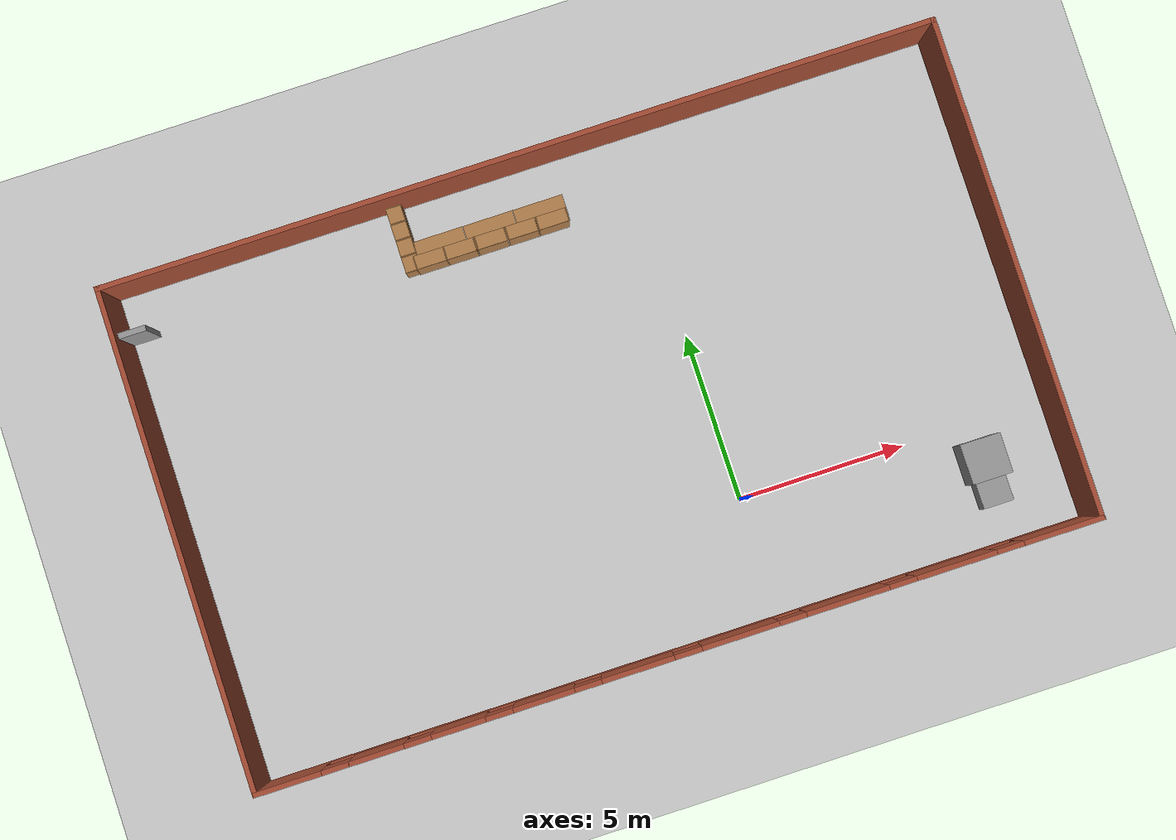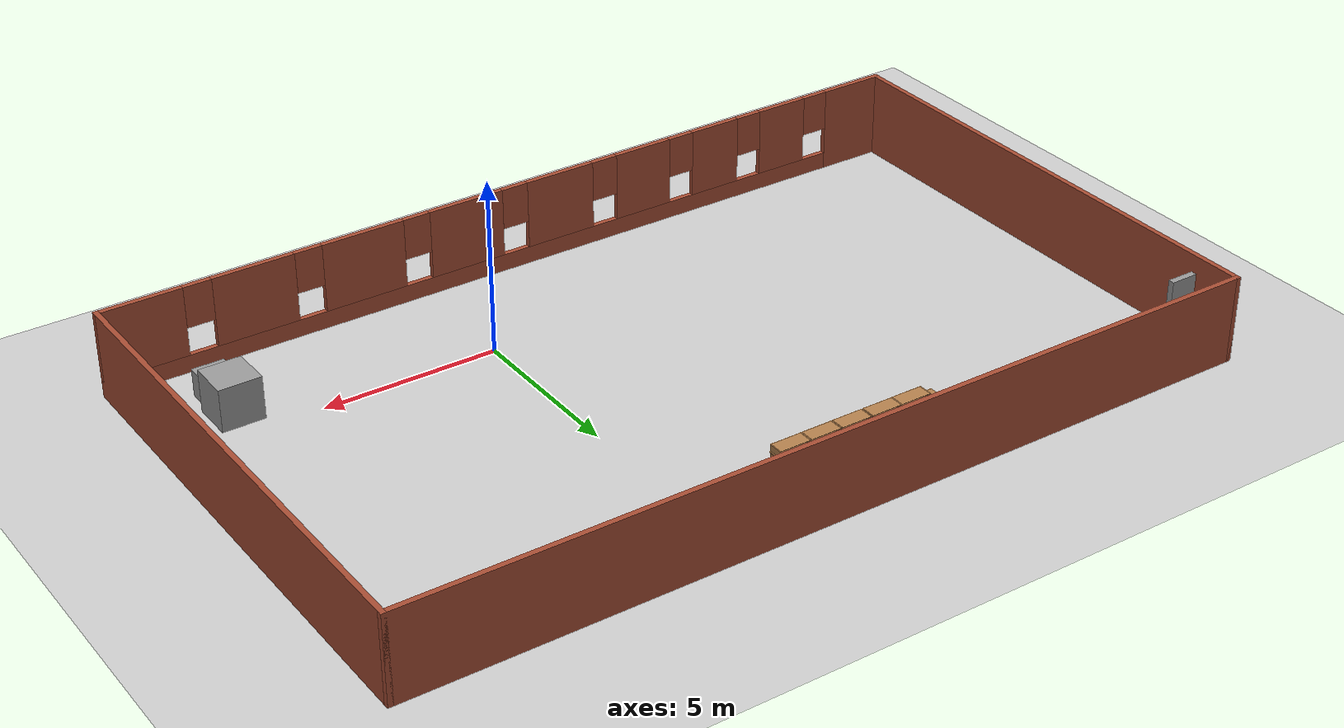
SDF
<sdf version="1.7">
 <world name="default">
  <light name="sun" type="directional">
   <pose>0 0 10 0 -0 0</pose>
   <diffuse>0.8 0.8 0.8 1</diffuse>
   <specular>0.2 0.2 0.2 1</specular>
   <attenuation>
    <range>1000</range>
    <constant>0.9</constant>
    <linear>0.01</linear>
    <quadratic>0.001</quadratic>
   </attenuation>
   <direction>-0.5 0.1 -0.9</direction>
   <spot><inner_angle>0</inner_angle><outer_angle>0</outer_angle><falloff>0</falloff></spot>
  </light>
  <model name="ground_plane">
   <static>1</static>
   <link name="link">
    <collision name="collision">
     <geometry><plane><normal>0 0 1</normal><size>100 100</size></plane></geometry>
     <surface><friction><ode><mu>100</mu><mu2>50</mu2></ode></friction></surface>
    </collision>
    <visual name="visual">
     <cast_shadows>0</cast_shadows>
     <geometry><plane><normal>0 0 1</normal><size>100 100</size></plane></geometry>
     <material>
      <script><uri>file://media/materials/scripts/gazebo.material</uri><name>Gazebo/Grey</name></script>
     </material>
    </visual>
   </link>
  </model>
  <gravity>0 0 -9.8</gravity>
  <magnetic_field>6e-06 2.3e-05 -4.2e-05</magnetic_field>
  <atmosphere type="adiabatic"/>
  <physics type="ode">
   <max_step_size>0.001</max_step_size>
   <real_time_factor>1</real_time_factor>
   <real_time_update_rate>1000</real_time_update_rate>
  </physics>
  <scene><ambient>0.4 0.4 0.4 1</ambient><background>0.7 0.7 0.7 1</background><shadows>1</shadows></scene>
  <audio><device>default</device></audio>
  <spherical_coordinates>
   <surface_model>EARTH_WGS84</surface_model>
   <latitude_deg>0</latitude_deg>
   <longitude_deg>0</longitude_deg>
   <elevation>0</elevation>
   <heading_deg>0</heading_deg>
  </spherical_coordinates>
  <model name="med_walls">
   <pose>-3.1131 3.80528 0 0 -0 0</pose>
   <link name="Door_1">
    <collision name="Door_1_Collision">
     <geometry><box><size>0.9 0.17 2</size></box></geometry>
     <pose>0 0 1 0 -0 0</pose>
    </collision>
    <visual name="Door_1_Visual">
     <pose>0 0 1 0 -0 0</pose>
     <geometry><box><size>0.9 0.17 2</size></box></geometry>
     <material>
      <script><uri>file://media/materials/scripts/gazebo.material</uri><name>Gazebo/Grey</name></script>
     </material>
    </visual>
    <pose>-11.9817 6.03627 0 0 -0 0</pose>
   </link>
   <link name="Wall_10">
    <pose>0 -7.425 0 0 -0 0</pose>
    <visual name="Wall_10_Visual_0">
     <pose>-11.4954 0 1.25 0 -0 0</pose>
     <geometry><box><size>2.00915 0.15 2.5</size></box></geometry>
     <material>
      <script><uri>file://media/materials/scripts/gazebo.material</uri><name>Gazebo/Bricks</name></script>
      <ambient>1 1 1 1</ambient>
     </material>
     <meta><layer>0</layer></meta>
    </visual>
    <collision name="Wall_10_Collision_0">
     <geometry><box><size>2.00915 0.15 2.5</size></box></geometry>
     <pose>-11.4954 0 1.25 0 -0 0</pose>
    </collision>
    <visual name="Wall_10_Visual_1">
     <pose>1.00457 0 0.25 0 -0 0</pose>
     <geometry><box><size>22.9909 0.15 0.5</size></box></geometry>
     <material>
      <script><uri>file://media/materials/scripts/gazebo.material</uri><name>Gazebo/Bricks</name></script>
      <ambient>1 1 1 1</ambient>
     </material>
     <meta><layer>0</layer></meta>
    </visual>
    <collision name="Wall_10_Collision_1">
     <geometry><box><size>22.9909 0.15 0.5</size></box></geometry>
     <pose>1.00457 0 0.25 0 -0 0</pose>
    </collision>
    <visual name="Wall_10_Visual_2">
     <pose>-8.88936 0 1.5 0 -0 0</pose>
     <geometry><box><size>1.60298 0.15 2</size></box></geometry>
     <material>
      <script><uri>file://media/materials/scripts/gazebo.material</uri><name>Gazebo/Bricks</name></script>
      <ambient>1 1 1 1</ambient>
     </material>
     <meta><layer>0</layer></meta>
    </visual>
    <collision name="Wall_10_Collision_2">
     <geometry><box><size>1.60298 0.15 2</size></box></geometry>
     <pose>-8.88936 0 1.5 0 -0 0</pose>
    </collision>
    <visual name="Wall_10_Visual_3">
     <pose>-6.49398 0 1.5 0 -0 0</pose>
     <geometry><box><size>1.58777 0.15 2</size></box></geometry>
     <material>
      <script><uri>file://media/materials/scripts/gazebo.material</uri><name>Gazebo/Bricks</name></script>
      <ambient>1 1 1 1</ambient>
     </material>
     <meta><layer>0</layer></meta>
    </visual>
    <collision name="Wall_10_Collision_3">
     <geometry><box><size>1.58777 0.15 2</size></box></geometry>
     <pose>-6.49398 0 1.5 0 -0 0</pose>
    </collision>
    <visual name="Wall_10_Visual_4">
     <pose>-3.99975 0 1.5 0 -0 0</pose>
     <geometry><box><size>1.8007 0.15 2</size></box></geometry>
     <material>
      <script><uri>file://media/materials/scripts/gazebo.material</uri><name>Gazebo/Bricks</name></script>
      <ambient>1 1 1 1</ambient>
     </material>
     <meta><layer>0</layer></meta>
    </visual>
    <collision name="Wall_10_Collision_4">
     <geometry><box><size>1.8007 0.15 2</size></box></geometry>
     <pose>-3.99975 0 1.5 0 -0 0</pose>
    </collision>
    <visual name="Wall_10_Visual_5">
     <pose>-1.23175 0 1.5 0 -0 0</pose>
     <geometry><box><size>2.13529 0.15 2</size></box></geometry>
     <material>
      <script><uri>file://media/materials/scripts/gazebo.material</uri><name>Gazebo/Bricks</name></script>
      <ambient>1 1 1 1</ambient>
     </material>
     <meta><layer>0</layer></meta>
    </visual>
    <collision name="Wall_10_Collision_5">
     <geometry><box><size>2.13529 0.15 2</size></box></geometry>
     <pose>-1.23175 0 1.5 0 -0 0</pose>
    </collision>
    <visual name="Wall_10_Visual_6">
     <pose>1.77197 0 1.5 0 -0 0</pose>
     <geometry><box><size>2.27217 0.15 2</size></box></geometry>
     <material>
      <script><uri>file://media/materials/scripts/gazebo.material</uri><name>Gazebo/Bricks</name></script>
      <ambient>1 1 1 1</ambient>
     </material>
     <meta><layer>0</layer></meta>
    </visual>
    <collision name="Wall_10_Collision_6">
     <geometry><box><size>2.27217 0.15 2</size></box></geometry>
     <pose>1.77197 0 1.5 0 -0 0</pose>
    </collision>
    <visual name="Wall_10_Visual_7">
     <pose>4.92779 0 1.5 0 -0 0</pose>
     <geometry><box><size>2.43946 0.15 2</size></box></geometry>
     <material>
      <script><uri>file://media/materials/scripts/gazebo.material</uri><name>Gazebo/Bricks</name></script>
      <ambient>1 1 1 1</ambient>
     </material>
     <meta><layer>0</layer></meta>
    </visual>
    <collision name="Wall_10_Collision_7">
     <geometry><box><size>2.43946 0.15 2</size></box></geometry>
     <pose>4.92779 0 1.5 0 -0 0</pose>
    </collision>
    <visual name="Wall_10_Visual_8">
     <pose>8.12923 0 1.5 0 -0 0</pose>
     <geometry><box><size>2.36342 0.15 2</size></box></geometry>
     <material>
      <script><uri>file://media/materials/scripts/gazebo.material</uri><name>Gazebo/Bricks</name></script>
      <ambient>1 1 1 1</ambient>
     </material>
     <meta><layer>0</layer></meta>
    </visual>
    <collision name="Wall_10_Collision_8">
     <geometry><box><size>2.36342 0.15 2</size></box></geometry>
     <pose>8.12923 0 1.5 0 -0 0</pose>
    </collision>
    <visual name="Wall_10_Visual_9">
     <pose>11.3055 0 1.5 0 -0 0</pose>
     <geometry><box><size>2.38906 0.15 2</size></box></geometry>
     <material>
      <script><uri>file://media/materials/scripts/gazebo.material</uri><name>Gazebo/Bricks</name></script>
      <ambient>1 1 1 1</ambient>
     </material>
     <meta><layer>0</layer></meta>
    </visual>
    <collision name="Wall_10_Collision_9">
     <geometry><box><size>2.38906 0.15 2</size></box></geometry>
     <pose>11.3055 0 1.5 0 -0 0</pose>
    </collision>
    <visual name="Wall_10_Visual_10">
     <pose>-10.0909 0 1.9 0 -0 0</pose>
     <geometry><box><size>0.8 0.15 1.2</size></box></geometry>
     <material>
      <script><uri>file://media/materials/scripts/gazebo.material</uri><name>Gazebo/Bricks</name></script>
      <ambient>1 1 1 1</ambient>
     </material>
     <meta><layer>0</layer></meta>
    </visual>
    <collision name="Wall_10_Collision_10">
     <geometry><box><size>0.8 0.15 1.2</size></box></geometry>
     <pose>-10.0909 0 1.9 0 -0 0</pose>
    </collision>
    <visual name="Wall_10_Visual_11">
     <pose>-7.68787 0 1.9 0 -0 0</pose>
     <geometry><box><size>0.8 0.15 1.2</size></box></geometry>
     <material>
      <script><uri>file://media/materials/scripts/gazebo.material</uri><name>Gazebo/Bricks</name></script>
      <ambient>1 1 1 1</ambient>
     </material>
     <meta><layer>0</layer></meta>
    </visual>
    <collision name="Wall_10_Collision_11">
     <geometry><box><size>0.8 0.15 1.2</size></box></geometry>
     <pose>-7.68787 0 1.9 0 -0 0</pose>
    </collision>
    <visual name="Wall_10_Visual_12">
     <pose>-5.3001 0 1.9 0 -0 0</pose>
     <geometry><box><size>0.8 0.15 1.2</size></box></geometry>
     <material>
      <script><uri>file://media/materials/scripts/gazebo.material</uri><name>Gazebo/Bricks</name></script>
      <ambient>1 1 1 1</ambient>
     </material>
     <meta><layer>0</layer></meta>
    </visual>
    <collision name="Wall_10_Collision_12">
     <geometry><box><size>0.8 0.15 1.2</size></box></geometry>
     <pose>-5.3001 0 1.9 0 -0 0</pose>
    </collision>
    <visual name="Wall_10_Visual_13">
     <pose>-2.6994 0 1.9 0 -0 0</pose>
     <geometry><box><size>0.8 0.15 1.2</size></box></geometry>
     <material>
      <script><uri>file://media/materials/scripts/gazebo.material</uri><name>Gazebo/Bricks</name></script>
      <ambient>1 1 1 1</ambient>
     </material>
     <meta><layer>0</layer></meta>
    </visual>
    <collision name="Wall_10_Collision_13">
     <geometry><box><size>0.8 0.15 1.2</size></box></geometry>
     <pose>-2.6994 0 1.9 0 -0 0</pose>
    </collision>
    <visual name="Wall_10_Visual_14">
     <pose>0.235889 0 1.9 0 -0 0</pose>
     <geometry><box><size>0.8 0.15 1.2</size></box></geometry>
     <material>
      <script><uri>file://media/materials/scripts/gazebo.material</uri><name>Gazebo/Bricks</name></script>
      <ambient>1 1 1 1</ambient>
     </material>
     <meta><layer>0</layer></meta>
    </visual>
    <collision name="Wall_10_Collision_14">
     <geometry><box><size>0.8 0.15 1.2</size></box></geometry>
     <pose>0.235889 0 1.9 0 -0 0</pose>
    </collision>
    <visual name="Wall_10_Visual_15">
     <pose>3.30806 0 1.9 0 -0 0</pose>
     <geometry><box><size>0.8 0.15 1.2</size></box></geometry>
     <material>
      <script><uri>file://media/materials/scripts/gazebo.material</uri><name>Gazebo/Bricks</name></script>
      <ambient>1 1 1 1</ambient>
     </material>
     <meta><layer>0</layer></meta>
    </visual>
    <collision name="Wall_10_Collision_15">
     <geometry><box><size>0.8 0.15 1.2</size></box></geometry>
     <pose>3.30806 0 1.9 0 -0 0</pose>
    </collision>
    <visual name="Wall_10_Visual_16">
     <pose>6.54752 0 1.9 0 -0 0</pose>
     <geometry><box><size>0.8 0.15 1.2</size></box></geometry>
     <material>
      <script><uri>file://media/materials/scripts/gazebo.material</uri><name>Gazebo/Bricks</name></script>
      <ambient>1 1 1 1</ambient>
     </material>
     <meta><layer>0</layer></meta>
    </visual>
    <collision name="Wall_10_Collision_16">
     <geometry><box><size>0.8 0.15 1.2</size></box></geometry>
     <pose>6.54752 0 1.9 0 -0 0</pose>
    </collision>
    <visual name="Wall_10_Visual_17">
     <pose>9.71094 0 1.9 0 -0 0</pose>
     <geometry><box><size>0.8 0.15 1.2</size></box></geometry>
     <material>
      <script><uri>file://media/materials/scripts/gazebo.material</uri><name>Gazebo/Bricks</name></script>
      <ambient>1 1 1 1</ambient>
     </material>
     <meta><layer>0</layer></meta>
    </visual>
    <collision name="Wall_10_Collision_17">
     <geometry><box><size>0.8 0.15 1.2</size></box></geometry>
     <pose>9.71094 0 1.9 0 -0 0</pose>
    </collision>
   </link>
   <link name="Wall_17">
    <collision name="Wall_17_Collision">
     <geometry><box><size>15 0.15 2.5</size></box></geometry>
     <pose>0 0 1.25 0 -0 0</pose>
    </collision>
    <visual name="Wall_17_Visual">
     <pose>0 0 1.25 0 -0 0</pose>
     <geometry><box><size>15 0.15 2.5</size></box></geometry>
     <material>
      <script><uri>file://media/materials/scripts/gazebo.material</uri><name>Gazebo/Bricks</name></script>
      <ambient>1 1 1 1</ambient>
     </material>
     <meta><layer>0</layer></meta>
    </visual>
    <pose>12.425 0 0 0 -0 1.5708</pose>
   </link>
   <link name="Wall_19">
    <collision name="Wall_19_Collision">
     <geometry><box><size>15 0.15 2.5</size></box></geometry>
     <pose>0 0 1.25 0 -0 0</pose>
    </collision>
    <visual name="Wall_19_Visual">
     <pose>0 0 1.25 0 -0 0</pose>
     <geometry><box><size>15 0.15 2.5</size></box></geometry>
     <material>
      <script><uri>file://media/materials/scripts/gazebo.material</uri><name>Gazebo/Bricks</name></script>
      <ambient>1 1 1 1</ambient>
     </material>
     <meta><layer>0</layer></meta>
    </visual>
    <pose>-12.425 0 0 0 -0 1.5708</pose>
   </link>
   <link name="Wall_21">
    <collision name="Wall_21_Collision">
     <geometry><box><size>25 0.15 2.5</size></box></geometry>
     <pose>0 0 1.25 0 -0 0</pose>
    </collision>
    <visual name="Wall_21_Visual">
     <pose>0 0 1.25 0 -0 0</pose>
     <geometry><box><size>25 0.15 2.5</size></box></geometry>
     <material>
      <script><uri>file://media/materials/scripts/gazebo.material</uri><name>Gazebo/Bricks</name></script>
      <ambient>1 1 1 1</ambient>
     </material>
     <meta><layer>0</layer></meta>
    </visual>
    <pose>0 7.425 0 0 -0 0</pose>
   </link>
   <static>1</static>
  </model>
  <model name="table">
   <static>1</static>
   <link name="link">
    <collision name="surface">
     <pose>0 0 1 0 -0 0</pose>
     <geometry><box><size>1.5 0.8 0.03</size></box></geometry>
     <surface><friction><ode><mu>0.6</mu><mu2>0.6</mu2></ode></friction></surface>
    </collision>
    <visual name="visual1">
     <pose>0 0 1 0 -0 0</pose>
     <geometry><box><size>1.5 0.8 0.03</size></box></geometry>
     <material>
      <script><uri>file://media/materials/scripts/gazebo.material</uri><name>Gazebo/Wood</name></script>
     </material>
    </visual>
    <collision name="front_left_leg">
     <pose>0.68 0.38 0.5 0 -0 0</pose>
     <geometry><cylinder><radius>0.02</radius><length>1</length></cylinder></geometry>
    </collision>
    <visual name="front_left_leg">
     <pose>0.68 0.38 0.5 0 -0 0</pose>
     <geometry><cylinder><radius>0.02</radius><length>1</length></cylinder></geometry>
     <material>
      <script><uri>file://media/materials/scripts/gazebo.material</uri><name>Gazebo/Grey</name></script>
     </material>
    </visual>
    <collision name="front_right_leg">
     <pose>0.68 -0.38 0.5 0 -0 0</pose>
     <geometry><cylinder><radius>0.02</radius><length>1</length></cylinder></geometry>
    </collision>
    <visual name="front_right_leg">
     <pose>0.68 -0.38 0.5 0 -0 0</pose>
     <geometry><cylinder><radius>0.02</radius><length>1</length></cylinder></geometry>
     <material>
      <script><uri>file://media/materials/scripts/gazebo.material</uri><name>Gazebo/Grey</name></script>
     </material>
    </visual>
    <collision name="back_right_leg">
     <pose>-0.68 -0.38 0.5 0 -0 0</pose>
     <geometry><cylinder><radius>0.02</radius><length>1</length></cylinder></geometry>
    </collision>
    <visual name="back_right_leg">
     <pose>-0.68 -0.38 0.5 0 -0 0</pose>
     <geometry><cylinder><radius>0.02</radius><length>1</length></cylinder></geometry>
     <material>
      <script><uri>file://media/materials/scripts/gazebo.material</uri><name>Gazebo/Grey</name></script>
     </material>
    </visual>
    <collision name="back_left_leg">
     <pose>-0.68 0.38 0.5 0 -0 0</pose>
     <geometry><cylinder><radius>0.02</radius><length>1</length></cylinder></geometry>
    </collision>
    <visual name="back_left_leg">
     <pose>-0.68 0.38 0.5 0 -0 0</pose>
     <geometry><cylinder><radius>0.02</radius><length>1</length></cylinder></geometry>
     <material>
      <script><uri>file://media/materials/scripts/gazebo.material</uri><name>Gazebo/Grey</name></script>
     </material>
    </visual>
   </link>
   <pose>-5.99294 9.5753 0 0 -0 0</pose>
  </model>
  <model name="table_clone">
   <static>1</static>
   <link name="link">
    <collision name="surface">
     <pose>0 0 1 0 -0 0</pose>
     <geometry><box><size>1.5 0.8 0.03</size></box></geometry>
     <surface><friction><ode><mu>0.6</mu><mu2>0.6</mu2></ode></friction></surface>
    </collision>
    <visual name="visual1">
     <pose>0 0 1 0 -0 0</pose>
     <geometry><box><size>1.5 0.8 0.03</size></box></geometry>
     <material>
      <script><uri>file://media/materials/scripts/gazebo.material</uri><name>Gazebo/Wood</name></script>
     </material>
    </visual>
    <collision name="front_left_leg">
     <pose>0.68 0.38 0.5 0 -0 0</pose>
     <geometry><cylinder><radius>0.02</radius><length>1</length></cylinder></geometry>
    </collision>
    <visual name="front_left_leg">
     <pose>0.68 0.38 0.5 0 -0 0</pose>
     <geometry><cylinder><radius>0.02</radius><length>1</length></cylinder></geometry>
     <material>
      <script><uri>file://media/materials/scripts/gazebo.material</uri><name>Gazebo/Grey</name></script>
     </material>
    </visual>
    <collision name="front_right_leg">
     <pose>0.68 -0.38 0.5 0 -0 0</pose>
     <geometry><cylinder><radius>0.02</radius><length>1</length></cylinder></geometry>
    </collision>
    <visual name="front_right_leg">
     <pose>0.68 -0.38 0.5 0 -0 0</pose>
     <geometry><cylinder><radius>0.02</radius><length>1</length></cylinder></geometry>
     <material>
      <script><uri>file://media/materials/scripts/gazebo.material</uri><name>Gazebo/Grey</name></script>
     </material>
    </visual>
    <collision name="back_right_leg">
     <pose>-0.68 -0.38 0.5 0 -0 0</pose>
     <geometry><cylinder><radius>0.02</radius><length>1</length></cylinder></geometry>
    </collision>
    <visual name="back_right_leg">
     <pose>-0.68 -0.38 0.5 0 -0 0</pose>
     <geometry><cylinder><radius>0.02</radius><length>1</length></cylinder></geometry>
     <material>
      <script><uri>file://media/materials/scripts/gazebo.material</uri><name>Gazebo/Grey</name></script>
     </material>
    </visual>
    <collision name="back_left_leg">
     <pose>-0.68 0.38 0.5 0 -0 0</pose>
     <geometry><cylinder><radius>0.02</radius><length>1</length></cylinder></geometry>
    </collision>
    <visual name="back_left_leg">
     <pose>-0.68 0.38 0.5 0 -0 0</pose>
     <geometry><cylinder><radius>0.02</radius><length>1</length></cylinder></geometry>
     <material>
      <script><uri>file://media/materials/scripts/gazebo.material</uri><name>Gazebo/Grey</name></script>
     </material>
    </visual>
   </link>
   <pose>-4.47492 9.5753 0 0 -0 0</pose>
  </model>
  <model name="table_clone_0">
   <static>1</static>
   <link name="link">
    <collision name="surface">
     <pose>0 0 1 0 -0 0</pose>
     <geometry><box><size>1.5 0.8 0.03</size></box></geometry>
     <surface><friction><ode><mu>0.6</mu><mu2>0.6</mu2></ode></friction></surface>
    </collision>
    <visual name="visual1">
     <pose>0 0 1 0 -0 0</pose>
     <geometry><box><size>1.5 0.8 0.03</size></box></geometry>
     <material>
      <script><uri>file://media/materials/scripts/gazebo.material</uri><name>Gazebo/Wood</name></script>
     </material>
    </visual>
    <collision name="front_left_leg">
     <pose>0.68 0.38 0.5 0 -0 0</pose>
     <geometry><cylinder><radius>0.02</radius><length>1</length></cylinder></geometry>
    </collision>
    <visual name="front_left_leg">
     <pose>0.68 0.38 0.5 0 -0 0</pose>
     <geometry><cylinder><radius>0.02</radius><length>1</length></cylinder></geometry>
     <material>
      <script><uri>file://media/materials/scripts/gazebo.material</uri><name>Gazebo/Grey</name></script>
     </material>
    </visual>
    <collision name="front_right_leg">
     <pose>0.68 -0.38 0.5 0 -0 0</pose>
     <geometry><cylinder><radius>0.02</radius><length>1</length></cylinder></geometry>
    </collision>
    <visual name="front_right_leg">
     <pose>0.68 -0.38 0.5 0 -0 0</pose>
     <geometry><cylinder><radius>0.02</radius><length>1</length></cylinder></geometry>
     <material>
      <script><uri>file://media/materials/scripts/gazebo.material</uri><name>Gazebo/Grey</name></script>
     </material>
    </visual>
    <collision name="back_right_leg">
     <pose>-0.68 -0.38 0.5 0 -0 0</pose>
     <geometry><cylinder><radius>0.02</radius><length>1</length></cylinder></geometry>
    </collision>
    <visual name="back_right_leg">
     <pose>-0.68 -0.38 0.5 0 -0 0</pose>
     <geometry><cylinder><radius>0.02</radius><length>1</length></cylinder></geometry>
     <material>
      <script><uri>file://media/materials/scripts/gazebo.material</uri><name>Gazebo/Grey</name></script>
     </material>
    </visual>
    <collision name="back_left_leg">
     <pose>-0.68 0.38 0.5 0 -0 0</pose>
     <geometry><cylinder><radius>0.02</radius><length>1</length></cylinder></geometry>
    </collision>
    <visual name="back_left_leg">
     <pose>-0.68 0.38 0.5 0 -0 0</pose>
     <geometry><cylinder><radius>0.02</radius><length>1</length></cylinder></geometry>
     <material>
      <script><uri>file://media/materials/scripts/gazebo.material</uri><name>Gazebo/Grey</name></script>
     </material>
    </visual>
   </link>
   <pose>-2.95957 9.5753 0 0 -0 0</pose>
  </model>
  <model name="cabinet_clone_0">
   <static>1</static>
   <link name="cabinet_bottom_plate">
    <inertial>
     <pose>0 0 -1 0 -0 0</pose>
     <inertia><ixx>2.05</ixx><ixy>0</ixy><ixz>0</ixz><iyy>2.05</iyy><iyz>0</iyz><izz>2.05</izz></inertia>
     <mass>25</mass>
    </inertial>
    <collision name="cabinet_bottom_plate_geom">
     <pose>0 0 0.01 0 -0 0</pose>
     <geometry><box><size>0.45 0.45 0.02</size></box></geometry>
    </collision>
    <visual name="cabinet_bottom_plate_geom_visual">
     <pose>0 0 0.01 0 -0 0</pose>
     <geometry><box><size>0.45 0.45 0.02</size></box></geometry>
     <material>
      <script><uri>file://media/materials/scripts/gazebo.material</uri><name>Gazebo/Wood</name></script>
     </material>
    </visual>
    <collision name="cabinet_bottom_plate_geom_cabinet_back_plate">
     <pose>0.235 0 0.51 0 -0 0</pose>
     <geometry><box><size>0.02 0.45 1.02</size></box></geometry>
    </collision>
    <visual name="cabinet_bottom_plate_geom_cabinet_back_plate_visual">
     <pose>0.235 0 0.51 0 -0 0</pose>
     <geometry><box><size>0.02 0.45 1.02</size></box></geometry>
     <material>
      <script><uri>file://media/materials/scripts/gazebo.material</uri><name>Gazebo/Wood</name></script>
     </material>
    </visual>
    <collision name="cabinet_bottom_plate_geom_cabinet_left_plate">
     <pose>0 0.235 0.51 0 -0 0</pose>
     <geometry><box><size>0.45 0.02 1.02</size></box></geometry>
    </collision>
    <visual name="cabinet_bottom_plate_geom_cabinet_left_plate_visual">
     <pose>0 0.235 0.51 0 -0 0</pose>
     <geometry><box><size>0.45 0.02 1.02</size></box></geometry>
     <material>
      <script><uri>file://media/materials/scripts/gazebo.material</uri><name>Gazebo/Wood</name></script>
     </material>
    </visual>
    <collision name="cabinet_bottom_plate_geom_cabinet_middle_plate">
     <pose>0 0 0.51 0 -0 0</pose>
     <geometry><box><size>0.45 0.45 0.02</size></box></geometry>
    </collision>
    <visual name="cabinet_bottom_plate_geom_cabinet_middle_plate_visual">
     <pose>0 0 0.51 0 -0 0</pose>
     <geometry><box><size>0.45 0.45 0.02</size></box></geometry>
     <material>
      <script><uri>file://media/materials/scripts/gazebo.material</uri><name>Gazebo/Wood</name></script>
     </material>
    </visual>
    <collision name="cabinet_bottom_plate_geom_cabinet_right_plate">
     <pose>0 -0.235 0.51 0 -0 0</pose>
     <geometry><box><size>0.45 0.02 1.02</size></box></geometry>
    </collision>
    <visual name="cabinet_bottom_plate_geom_cabinet_right_plate_visual">
     <pose>0 -0.235 0.51 0 -0 0</pose>
     <geometry><box><size>0.45 0.02 1.02</size></box></geometry>
     <material>
      <script><uri>file://media/materials/scripts/gazebo.material</uri><name>Gazebo/Wood</name></script>
     </material>
    </visual>
    <collision name="cabinet_bottom_plate_geom_cabinet_top_plate">
     <pose>0 0 1.01 0 -0 0</pose>
     <geometry><box><size>0.45 0.45 0.02</size></box></geometry>
    </collision>
    <visual name="cabinet_bottom_plate_geom_cabinet_top_plate_visual">
     <pose>0 0 1.01 0 -0 0</pose>
     <geometry><box><size>0.45 0.45 0.02</size></box></geometry>
     <material>
      <script><uri>file://media/materials/scripts/gazebo.material</uri><name>Gazebo/Wood</name></script>
     </material>
    </visual>
   </link>
   <pose>-6.97745 9.41498 0 0 -0 0</pose>
  </model>
  <model name="cabinet_clone_1">
   <static>1</static>
   <link name="cabinet_bottom_plate">
    <inertial>
     <pose>0 0 -1 0 -0 0</pose>
     <inertia><ixx>2.05</ixx><ixy>0</ixy><ixz>0</ixz><iyy>2.05</iyy><iyz>0</iyz><izz>2.05</izz></inertia>
     <mass>25</mass>
    </inertial>
    <collision name="cabinet_bottom_plate_geom">
     <pose>0 0 0.01 0 -0 0</pose>
     <geometry><box><size>0.45 0.45 0.02</size></box></geometry>
    </collision>
    <visual name="cabinet_bottom_plate_geom_visual">
     <pose>0 0 0.01 0 -0 0</pose>
     <geometry><box><size>0.45 0.45 0.02</size></box></geometry>
     <material>
      <script><uri>file://media/materials/scripts/gazebo.material</uri><name>Gazebo/Wood</name></script>
     </material>
    </visual>
    <collision name="cabinet_bottom_plate_geom_cabinet_back_plate">
     <pose>0.235 0 0.51 0 -0 0</pose>
     <geometry><box><size>0.02 0.45 1.02</size></box></geometry>
    </collision>
    <visual name="cabinet_bottom_plate_geom_cabinet_back_plate_visual">
     <pose>0.235 0 0.51 0 -0 0</pose>
     <geometry><box><size>0.02 0.45 1.02</size></box></geometry>
     <material>
      <script><uri>file://media/materials/scripts/gazebo.material</uri><name>Gazebo/Wood</name></script>
     </material>
    </visual>
    <collision name="cabinet_bottom_plate_geom_cabinet_left_plate">
     <pose>0 0.235 0.51 0 -0 0</pose>
     <geometry><box><size>0.45 0.02 1.02</size></box></geometry>
    </collision>
    <visual name="cabinet_bottom_plate_geom_cabinet_left_plate_visual">
     <pose>0 0.235 0.51 0 -0 0</pose>
     <geometry><box><size>0.45 0.02 1.02</size></box></geometry>
     <material>
      <script><uri>file://media/materials/scripts/gazebo.material</uri><name>Gazebo/Wood</name></script>
     </material>
    </visual>
    <collision name="cabinet_bottom_plate_geom_cabinet_middle_plate">
     <pose>0 0 0.51 0 -0 0</pose>
     <geometry><box><size>0.45 0.45 0.02</size></box></geometry>
    </collision>
    <visual name="cabinet_bottom_plate_geom_cabinet_middle_plate_visual">
     <pose>0 0 0.51 0 -0 0</pose>
     <geometry><box><size>0.45 0.45 0.02</size></box></geometry>
     <material>
      <script><uri>file://media/materials/scripts/gazebo.material</uri><name>Gazebo/Wood</name></script>
     </material>
    </visual>
    <collision name="cabinet_bottom_plate_geom_cabinet_right_plate">
     <pose>0 -0.235 0.51 0 -0 0</pose>
     <geometry><box><size>0.45 0.02 1.02</size></box></geometry>
    </collision>
    <visual name="cabinet_bottom_plate_geom_cabinet_right_plate_visual">
     <pose>0 -0.235 0.51 0 -0 0</pose>
     <geometry><box><size>0.45 0.02 1.02</size></box></geometry>
     <material>
      <script><uri>file://media/materials/scripts/gazebo.material</uri><name>Gazebo/Wood</name></script>
     </material>
    </visual>
    <collision name="cabinet_bottom_plate_geom_cabinet_top_plate">
     <pose>0 0 1.01 0 -0 0</pose>
     <geometry><box><size>0.45 0.45 0.02</size></box></geometry>
    </collision>
    <visual name="cabinet_bottom_plate_geom_cabinet_top_plate_visual">
     <pose>0 0 1.01 0 -0 0</pose>
     <geometry><box><size>0.45 0.45 0.02</size></box></geometry>
     <material>
      <script><uri>file://media/materials/scripts/gazebo.material</uri><name>Gazebo/Wood</name></script>
     </material>
    </visual>
   </link>
   <pose>-6.97745 10.4079 0 0 -0 0</pose>
  </model>
  <model name="cabinet_clone_2">
   <static>1</static>
   <link name="cabinet_bottom_plate">
    <inertial>
     <pose>0 0 -1 0 -0 0</pose>
     <inertia><ixx>2.05</ixx><ixy>0</ixy><ixz>0</ixz><iyy>2.05</iyy><iyz>0</iyz><izz>2.05</izz></inertia>
     <mass>25</mass>
    </inertial>
    <collision name="cabinet_bottom_plate_geom">
     <pose>0 0 0.01 0 -0 0</pose>
     <geometry><box><size>0.45 0.45 0.02</size></box></geometry>
    </collision>
    <visual name="cabinet_bottom_plate_geom_visual">
     <pose>0 0 0.01 0 -0 0</pose>
     <geometry><box><size>0.45 0.45 0.02</size></box></geometry>
     <material>
      <script><uri>file://media/materials/scripts/gazebo.material</uri><name>Gazebo/Wood</name></script>
     </material>
    </visual>
    <collision name="cabinet_bottom_plate_geom_cabinet_back_plate">
     <pose>0.235 0 0.51 0 -0 0</pose>
     <geometry><box><size>0.02 0.45 1.02</size></box></geometry>
    </collision>
    <visual name="cabinet_bottom_plate_geom_cabinet_back_plate_visual">
     <pose>0.235 0 0.51 0 -0 0</pose>
     <geometry><box><size>0.02 0.45 1.02</size></box></geometry>
     <material>
      <script><uri>file://media/materials/scripts/gazebo.material</uri><name>Gazebo/Wood</name></script>
     </material>
    </visual>
    <collision name="cabinet_bottom_plate_geom_cabinet_left_plate">
     <pose>0 0.235 0.51 0 -0 0</pose>
     <geometry><box><size>0.45 0.02 1.02</size></box></geometry>
    </collision>
    <visual name="cabinet_bottom_plate_geom_cabinet_left_plate_visual">
     <pose>0 0.235 0.51 0 -0 0</pose>
     <geometry><box><size>0.45 0.02 1.02</size></box></geometry>
     <material>
      <script><uri>file://media/materials/scripts/gazebo.material</uri><name>Gazebo/Wood</name></script>
     </material>
    </visual>
    <collision name="cabinet_bottom_plate_geom_cabinet_middle_plate">
     <pose>0 0 0.51 0 -0 0</pose>
     <geometry><box><size>0.45 0.45 0.02</size></box></geometry>
    </collision>
    <visual name="cabinet_bottom_plate_geom_cabinet_middle_plate_visual">
     <pose>0 0 0.51 0 -0 0</pose>
     <geometry><box><size>0.45 0.45 0.02</size></box></geometry>
     <material>
      <script><uri>file://media/materials/scripts/gazebo.material</uri><name>Gazebo/Wood</name></script>
     </material>
    </visual>
    <collision name="cabinet_bottom_plate_geom_cabinet_right_plate">
     <pose>0 -0.235 0.51 0 -0 0</pose>
     <geometry><box><size>0.45 0.02 1.02</size></box></geometry>
    </collision>
    <visual name="cabinet_bottom_plate_geom_cabinet_right_plate_visual">
     <pose>0 -0.235 0.51 0 -0 0</pose>
     <geometry><box><size>0.45 0.02 1.02</size></box></geometry>
     <material>
      <script><uri>file://media/materials/scripts/gazebo.material</uri><name>Gazebo/Wood</name></script>
     </material>
    </visual>
    <collision name="cabinet_bottom_plate_geom_cabinet_top_plate">
     <pose>0 0 1.01 0 -0 0</pose>
     <geometry><box><size>0.45 0.45 0.02</size></box></geometry>
    </collision>
    <visual name="cabinet_bottom_plate_geom_cabinet_top_plate_visual">
     <pose>0 0 1.01 0 -0 0</pose>
     <geometry><box><size>0.45 0.45 0.02</size></box></geometry>
     <material>
      <script><uri>file://media/materials/scripts/gazebo.material</uri><name>Gazebo/Wood</name></script>
     </material>
    </visual>
   </link>
   <pose>-6.97745 9.91083 0 0 -0 0</pose>
  </model>
  <model name="cabinet_clone_2_clone">
   <static>1</static>
   <link name="cabinet_bottom_plate">
    <inertial>
     <pose>0 0 -1 0 -0 0</pose>
     <inertia><ixx>2.05</ixx><ixy>0</ixy><ixz>0</ixz><iyy>2.05</iyy><iyz>0</iyz><izz>2.05</izz></inertia>
     <mass>25</mass>
    </inertial>
    <collision name="cabinet_bottom_plate_geom">
     <pose>0 0 0.01 0 -0 0</pose>
     <geometry><box><size>0.45 0.45 0.02</size></box></geometry>
    </collision>
    <visual name="cabinet_bottom_plate_geom_visual">
     <pose>0 0 0.01 0 -0 0</pose>
     <geometry><box><size>0.45 0.45 0.02</size></box></geometry>
     <material>
      <script><uri>file://media/materials/scripts/gazebo.material</uri><name>Gazebo/Wood</name></script>
     </material>
    </visual>
    <collision name="cabinet_bottom_plate_geom_cabinet_back_plate">
     <pose>0.235 0 0.51 0 -0 0</pose>
     <geometry><box><size>0.02 0.45 1.02</size></box></geometry>
    </collision>
    <visual name="cabinet_bottom_plate_geom_cabinet_back_plate_visual">
     <pose>0.235 0 0.51 0 -0 0</pose>
     <geometry><box><size>0.02 0.45 1.02</size></box></geometry>
     <material>
      <script><uri>file://media/materials/scripts/gazebo.material</uri><name>Gazebo/Wood</name></script>
     </material>
    </visual>
    <collision name="cabinet_bottom_plate_geom_cabinet_left_plate">
     <pose>0 0.235 0.51 0 -0 0</pose>
     <geometry><box><size>0.45 0.02 1.02</size></box></geometry>
    </collision>
    <visual name="cabinet_bottom_plate_geom_cabinet_left_plate_visual">
     <pose>0 0.235 0.51 0 -0 0</pose>
     <geometry><box><size>0.45 0.02 1.02</size></box></geometry>
     <material>
      <script><uri>file://media/materials/scripts/gazebo.material</uri><name>Gazebo/Wood</name></script>
     </material>
    </visual>
    <collision name="cabinet_bottom_plate_geom_cabinet_middle_plate">
     <pose>0 0 0.51 0 -0 0</pose>
     <geometry><box><size>0.45 0.45 0.02</size></box></geometry>
    </collision>
    <visual name="cabinet_bottom_plate_geom_cabinet_middle_plate_visual">
     <pose>0 0 0.51 0 -0 0</pose>
     <geometry><box><size>0.45 0.45 0.02</size></box></geometry>
     <material>
      <script><uri>file://media/materials/scripts/gazebo.material</uri><name>Gazebo/Wood</name></script>
     </material>
    </visual>
    <collision name="cabinet_bottom_plate_geom_cabinet_right_plate">
     <pose>0 -0.235 0.51 0 -0 0</pose>
     <geometry><box><size>0.45 0.02 1.02</size></box></geometry>
    </collision>
    <visual name="cabinet_bottom_plate_geom_cabinet_right_plate_visual">
     <pose>0 -0.235 0.51 0 -0 0</pose>
     <geometry><box><size>0.45 0.02 1.02</size></box></geometry>
     <material>
      <script><uri>file://media/materials/scripts/gazebo.material</uri><name>Gazebo/Wood</name></script>
     </material>
    </visual>
    <collision name="cabinet_bottom_plate_geom_cabinet_top_plate">
     <pose>0 0 1.01 0 -0 0</pose>
     <geometry><box><size>0.45 0.45 0.02</size></box></geometry>
    </collision>
    <visual name="cabinet_bottom_plate_geom_cabinet_top_plate_visual">
     <pose>0 0 1.01 0 -0 0</pose>
     <geometry><box><size>0.45 0.45 0.02</size></box></geometry>
     <material>
      <script><uri>file://media/materials/scripts/gazebo.material</uri><name>Gazebo/Wood</name></script>
     </material>
    </visual>
   </link>
   <pose>-6.97745 10.9018 0 0 -0 0</pose>
  </model>
  <model name="bookshelf">
   <static>1</static>
   <link name="link">
    <inertial><mass>1</mass></inertial>
    <collision name="back">
     <pose>0 0.005 0.6 0 -0 0</pose>
     <geometry><box><size>0.9 0.01 1.2</size></box></geometry>
    </collision>
    <visual name="visual1">
     <pose>0 0.005 0.6 0 -0 0</pose>
     <geometry><box><size>0.9 0.01 1.2</size></box></geometry>
     <material>
      <script><uri>file://media/materials/scripts/gazebo.material</uri><name>Gazebo/Wood</name></script>
     </material>
    </visual>
    <collision name="left_side">
     <pose>0.45 -0.195 0.6 0 -0 0</pose>
     <geometry><box><size>0.02 0.4 1.2</size></box></geometry>
    </collision>
    <visual name="visual2">
     <pose>0.45 -0.195 0.6 0 -0 0</pose>
     <geometry><box><size>0.02 0.4 1.2</size></box></geometry>
     <material>
      <script><uri>file://media/materials/scripts/gazebo.material</uri><name>Gazebo/Wood</name></script>
     </material>
    </visual>
    <collision name="right_side">
     <pose>-0.45 -0.195 0.6 0 -0 0</pose>
     <geometry><box><size>0.02 0.4 1.2</size></box></geometry>
    </collision>
    <visual name="visual3">
     <pose>-0.45 -0.195 0.6 0 -0 0</pose>
     <geometry><box><size>0.02 0.4 1.2</size></box></geometry>
     <material>
      <script><uri>file://media/materials/scripts/gazebo.material</uri><name>Gazebo/Wood</name></script>
     </material>
    </visual>
    <collision name="bottom">
     <pose>0 -0.195 0.03 0 -0 0</pose>
     <geometry><box><size>0.88 0.4 0.06</size></box></geometry>
    </collision>
    <visual name="visual4">
     <pose>0 -0.195 0.03 0 -0 0</pose>
     <geometry><box><size>0.88 0.4 0.06</size></box></geometry>
     <material>
      <script><uri>file://media/materials/scripts/gazebo.material</uri><name>Gazebo/Wood</name></script>
     </material>
    </visual>
    <collision name="top">
     <pose>0 -0.195 1.19 0 -0 0</pose>
     <geometry><box><size>0.88 0.4 0.02</size></box></geometry>
    </collision>
    <visual name="visual5">
     <pose>0 -0.195 1.19 0 -0 0</pose>
     <geometry><box><size>0.88 0.4 0.02</size></box></geometry>
     <material>
      <script><uri>file://media/materials/scripts/gazebo.material</uri><name>Gazebo/Wood</name></script>
     </material>
    </visual>
    <collision name="low_shelf">
     <pose>0 -0.195 0.43 0 -0 0</pose>
     <geometry><box><size>0.88 0.4 0.02</size></box></geometry>
    </collision>
    <visual name="visual6">
     <pose>0 -0.195 0.43 0 -0 0</pose>
     <geometry><box><size>0.88 0.4 0.02</size></box></geometry>
     <material>
      <script><uri>file://media/materials/scripts/gazebo.material</uri><name>Gazebo/Wood</name></script>
     </material>
    </visual>
    <collision name="high_shelf">
     <pose>0 -0.195 0.8 0 -0 0</pose>
     <geometry><box><size>0.88 0.4 0.02</size></box></geometry>
    </collision>
    <visual name="visual7">
     <pose>0 -0.195 0.8 0 -0 0</pose>
     <geometry><box><size>0.88 0.4 0.02</size></box></geometry>
     <material>
      <script><uri>file://media/materials/scripts/gazebo.material</uri><name>Gazebo/Wood</name></script>
     </material>
    </visual>
   </link>
   <pose>-2.70056 9.16191 0 0 -0 3.13728</pose>
  </model>
  <model name="bookshelf_clone">
   <static>1</static>
   <link name="link">
    <inertial><mass>1</mass></inertial>
    <collision name="back">
     <pose>0 0.005 0.6 0 -0 0</pose>
     <geometry><box><size>0.9 0.01 1.2</size></box></geometry>
    </collision>
    <visual name="visual1">
     <pose>0 0.005 0.6 0 -0 0</pose>
     <geometry><box><size>0.9 0.01 1.2</size></box></geometry>
     <material>
      <script><uri>file://media/materials/scripts/gazebo.material</uri><name>Gazebo/Wood</name></script>
     </material>
    </visual>
    <collision name="left_side">
     <pose>0.45 -0.195 0.6 0 -0 0</pose>
     <geometry><box><size>0.02 0.4 1.2</size></box></geometry>
    </collision>
    <visual name="visual2">
     <pose>0.45 -0.195 0.6 0 -0 0</pose>
     <geometry><box><size>0.02 0.4 1.2</size></box></geometry>
     <material>
      <script><uri>file://media/materials/scripts/gazebo.material</uri><name>Gazebo/Wood</name></script>
     </material>
    </visual>
    <collision name="right_side">
     <pose>-0.45 -0.195 0.6 0 -0 0</pose>
     <geometry><box><size>0.02 0.4 1.2</size></box></geometry>
    </collision>
    <visual name="visual3">
     <pose>-0.45 -0.195 0.6 0 -0 0</pose>
     <geometry><box><size>0.02 0.4 1.2</size></box></geometry>
     <material>
      <script><uri>file://media/materials/scripts/gazebo.material</uri><name>Gazebo/Wood</name></script>
     </material>
    </visual>
    <collision name="bottom">
     <pose>0 -0.195 0.03 0 -0 0</pose>
     <geometry><box><size>0.88 0.4 0.06</size></box></geometry>
    </collision>
    <visual name="visual4">
     <pose>0 -0.195 0.03 0 -0 0</pose>
     <geometry><box><size>0.88 0.4 0.06</size></box></geometry>
     <material>
      <script><uri>file://media/materials/scripts/gazebo.material</uri><name>Gazebo/Wood</name></script>
     </material>
    </visual>
    <collision name="top">
     <pose>0 -0.195 1.19 0 -0 0</pose>
     <geometry><box><size>0.88 0.4 0.02</size></box></geometry>
    </collision>
    <visual name="visual5">
     <pose>0 -0.195 1.19 0 -0 0</pose>
     <geometry><box><size>0.88 0.4 0.02</size></box></geometry>
     <material>
      <script><uri>file://media/materials/scripts/gazebo.material</uri><name>Gazebo/Wood</name></script>
     </material>
    </visual>
    <collision name="low_shelf">
     <pose>0 -0.195 0.43 0 -0 0</pose>
     <geometry><box><size>0.88 0.4 0.02</size></box></geometry>
    </collision>
    <visual name="visual6">
     <pose>0 -0.195 0.43 0 -0 0</pose>
     <geometry><box><size>0.88 0.4 0.02</size></box></geometry>
     <material>
      <script><uri>file://media/materials/scripts/gazebo.material</uri><name>Gazebo/Wood</name></script>
     </material>
    </visual>
    <collision name="high_shelf">
     <pose>0 -0.195 0.8 0 -0 0</pose>
     <geometry><box><size>0.88 0.4 0.02</size></box></geometry>
    </collision>
    <visual name="visual7">
     <pose>0 -0.195 0.8 0 -0 0</pose>
     <geometry><box><size>0.88 0.4 0.02</size></box></geometry>
     <material>
      <script><uri>file://media/materials/scripts/gazebo.material</uri><name>Gazebo/Wood</name></script>
     </material>
    </visual>
   </link>
   <pose>-3.62714 9.16191 0 0 -0 3.13728</pose>
  </model>
  <model name="bookshelf_clone_0">
   <static>1</static>
   <link name="link">
    <inertial><mass>1</mass></inertial>
    <collision name="back">
     <pose>0 0.005 0.6 0 -0 0</pose>
     <geometry><box><size>0.9 0.01 1.2</size></box></geometry>
    </collision>
    <visual name="visual1">
     <pose>0 0.005 0.6 0 -0 0</pose>
     <geometry><box><size>0.9 0.01 1.2</size></box></geometry>
     <material>
      <script><uri>file://media/materials/scripts/gazebo.material</uri><name>Gazebo/Wood</name></script>
     </material>
    </visual>
    <collision name="left_side">
     <pose>0.45 -0.195 0.6 0 -0 0</pose>
     <geometry><box><size>0.02 0.4 1.2</size></box></geometry>
    </collision>
    <visual name="visual2">
     <pose>0.45 -0.195 0.6 0 -0 0</pose>
     <geometry><box><size>0.02 0.4 1.2</size></box></geometry>
     <material>
      <script><uri>file://media/materials/scripts/gazebo.material</uri><name>Gazebo/Wood</name></script>
     </material>
    </visual>
    <collision name="right_side">
     <pose>-0.45 -0.195 0.6 0 -0 0</pose>
     <geometry><box><size>0.02 0.4 1.2</size></box></geometry>
    </collision>
    <visual name="visual3">
     <pose>-0.45 -0.195 0.6 0 -0 0</pose>
     <geometry><box><size>0.02 0.4 1.2</size></box></geometry>
     <material>
      <script><uri>file://media/materials/scripts/gazebo.material</uri><name>Gazebo/Wood</name></script>
     </material>
    </visual>
    <collision name="bottom">
     <pose>0 -0.195 0.03 0 -0 0</pose>
     <geometry><box><size>0.88 0.4 0.06</size></box></geometry>
    </collision>
    <visual name="visual4">
     <pose>0 -0.195 0.03 0 -0 0</pose>
     <geometry><box><size>0.88 0.4 0.06</size></box></geometry>
     <material>
      <script><uri>file://media/materials/scripts/gazebo.material</uri><name>Gazebo/Wood</name></script>
     </material>
    </visual>
    <collision name="top">
     <pose>0 -0.195 1.19 0 -0 0</pose>
     <geometry><box><size>0.88 0.4 0.02</size></box></geometry>
    </collision>
    <visual name="visual5">
     <pose>0 -0.195 1.19 0 -0 0</pose>
     <geometry><box><size>0.88 0.4 0.02</size></box></geometry>
     <material>
      <script><uri>file://media/materials/scripts/gazebo.material</uri><name>Gazebo/Wood</name></script>
     </material>
    </visual>
    <collision name="low_shelf">
     <pose>0 -0.195 0.43 0 -0 0</pose>
     <geometry><box><size>0.88 0.4 0.02</size></box></geometry>
    </collision>
    <visual name="visual6">
     <pose>0 -0.195 0.43 0 -0 0</pose>
     <geometry><box><size>0.88 0.4 0.02</size></box></geometry>
     <material>
      <script><uri>file://media/materials/scripts/gazebo.material</uri><name>Gazebo/Wood</name></script>
     </material>
    </visual>
    <collision name="high_shelf">
     <pose>0 -0.195 0.8 0 -0 0</pose>
     <geometry><box><size>0.88 0.4 0.02</size></box></geometry>
    </collision>
    <visual name="visual7">
     <pose>0 -0.195 0.8 0 -0 0</pose>
     <geometry><box><size>0.88 0.4 0.02</size></box></geometry>
     <material>
      <script><uri>file://media/materials/scripts/gazebo.material</uri><name>Gazebo/Wood</name></script>
     </material>
    </visual>
   </link>
   <pose>-4.55765 9.16191 0 0 -0 3.13728</pose>
  </model>
  <model name="bookshelf_clone_1">
   <static>1</static>
   <link name="link">
    <inertial><mass>1</mass></inertial>
    <collision name="back">
     <pose>0 0.005 0.6 0 -0 0</pose>
     <geometry><box><size>0.9 0.01 1.2</size></box></geometry>
    </collision>
    <visual name="visual1">
     <pose>0 0.005 0.6 0 -0 0</pose>
     <geometry><box><size>0.9 0.01 1.2</size></box></geometry>
     <material>
      <script><uri>file://media/materials/scripts/gazebo.material</uri><name>Gazebo/Wood</name></script>
     </material>
    </visual>
    <collision name="left_side">
     <pose>0.45 -0.195 0.6 0 -0 0</pose>
     <geometry><box><size>0.02 0.4 1.2</size></box></geometry>
    </collision>
    <visual name="visual2">
     <pose>0.45 -0.195 0.6 0 -0 0</pose>
     <geometry><box><size>0.02 0.4 1.2</size></box></geometry>
     <material>
      <script><uri>file://media/materials/scripts/gazebo.material</uri><name>Gazebo/Wood</name></script>
     </material>
    </visual>
    <collision name="right_side">
     <pose>-0.45 -0.195 0.6 0 -0 0</pose>
     <geometry><box><size>0.02 0.4 1.2</size></box></geometry>
    </collision>
    <visual name="visual3">
     <pose>-0.45 -0.195 0.6 0 -0 0</pose>
     <geometry><box><size>0.02 0.4 1.2</size></box></geometry>
     <material>
      <script><uri>file://media/materials/scripts/gazebo.material</uri><name>Gazebo/Wood</name></script>
     </material>
    </visual>
    <collision name="bottom">
     <pose>0 -0.195 0.03 0 -0 0</pose>
     <geometry><box><size>0.88 0.4 0.06</size></box></geometry>
    </collision>
    <visual name="visual4">
     <pose>0 -0.195 0.03 0 -0 0</pose>
     <geometry><box><size>0.88 0.4 0.06</size></box></geometry>
     <material>
      <script><uri>file://media/materials/scripts/gazebo.material</uri><name>Gazebo/Wood</name></script>
     </material>
    </visual>
    <collision name="top">
     <pose>0 -0.195 1.19 0 -0 0</pose>
     <geometry><box><size>0.88 0.4 0.02</size></box></geometry>
    </collision>
    <visual name="visual5">
     <pose>0 -0.195 1.19 0 -0 0</pose>
     <geometry><box><size>0.88 0.4 0.02</size></box></geometry>
     <material>
      <script><uri>file://media/materials/scripts/gazebo.material</uri><name>Gazebo/Wood</name></script>
     </material>
    </visual>
    <collision name="low_shelf">
     <pose>0 -0.195 0.43 0 -0 0</pose>
     <geometry><box><size>0.88 0.4 0.02</size></box></geometry>
    </collision>
    <visual name="visual6">
     <pose>0 -0.195 0.43 0 -0 0</pose>
     <geometry><box><size>0.88 0.4 0.02</size></box></geometry>
     <material>
      <script><uri>file://media/materials/scripts/gazebo.material</uri><name>Gazebo/Wood</name></script>
     </material>
    </visual>
    <collision name="high_shelf">
     <pose>0 -0.195 0.8 0 -0 0</pose>
     <geometry><box><size>0.88 0.4 0.02</size></box></geometry>
    </collision>
    <visual name="visual7">
     <pose>0 -0.195 0.8 0 -0 0</pose>
     <geometry><box><size>0.88 0.4 0.02</size></box></geometry>
     <material>
      <script><uri>file://media/materials/scripts/gazebo.material</uri><name>Gazebo/Wood</name></script>
     </material>
    </visual>
   </link>
   <pose>-5.49467 9.16191 0 0 -0 3.13728</pose>
  </model>
  <model name="bookshelf_clone_2">
   <static>1</static>
   <link name="link">
    <inertial><mass>1</mass></inertial>
    <collision name="back">
     <pose>0 0.005 0.6 0 -0 0</pose>
     <geometry><box><size>0.9 0.01 1.2</size></box></geometry>
    </collision>
    <visual name="visual1">
     <pose>0 0.005 0.6 0 -0 0</pose>
     <geometry><box><size>0.9 0.01 1.2</size></box></geometry>
     <material>
      <script><uri>file://media/materials/scripts/gazebo.material</uri><name>Gazebo/Wood</name></script>
     </material>
    </visual>
    <collision name="left_side">
     <pose>0.45 -0.195 0.6 0 -0 0</pose>
     <geometry><box><size>0.02 0.4 1.2</size></box></geometry>
    </collision>
    <visual name="visual2">
     <pose>0.45 -0.195 0.6 0 -0 0</pose>
     <geometry><box><size>0.02 0.4 1.2</size></box></geometry>
     <material>
      <script><uri>file://media/materials/scripts/gazebo.material</uri><name>Gazebo/Wood</name></script>
     </material>
    </visual>
    <collision name="right_side">
     <pose>-0.45 -0.195 0.6 0 -0 0</pose>
     <geometry><box><size>0.02 0.4 1.2</size></box></geometry>
    </collision>
    <visual name="visual3">
     <pose>-0.45 -0.195 0.6 0 -0 0</pose>
     <geometry><box><size>0.02 0.4 1.2</size></box></geometry>
     <material>
      <script><uri>file://media/materials/scripts/gazebo.material</uri><name>Gazebo/Wood</name></script>
     </material>
    </visual>
    <collision name="bottom">
     <pose>0 -0.195 0.03 0 -0 0</pose>
     <geometry><box><size>0.88 0.4 0.06</size></box></geometry>
    </collision>
    <visual name="visual4">
     <pose>0 -0.195 0.03 0 -0 0</pose>
     <geometry><box><size>0.88 0.4 0.06</size></box></geometry>
     <material>
      <script><uri>file://media/materials/scripts/gazebo.material</uri><name>Gazebo/Wood</name></script>
     </material>
    </visual>
    <collision name="top">
     <pose>0 -0.195 1.19 0 -0 0</pose>
     <geometry><box><size>0.88 0.4 0.02</size></box></geometry>
    </collision>
    <visual name="visual5">
     <pose>0 -0.195 1.19 0 -0 0</pose>
     <geometry><box><size>0.88 0.4 0.02</size></box></geometry>
     <material>
      <script><uri>file://media/materials/scripts/gazebo.material</uri><name>Gazebo/Wood</name></script>
     </material>
    </visual>
    <collision name="low_shelf">
     <pose>0 -0.195 0.43 0 -0 0</pose>
     <geometry><box><size>0.88 0.4 0.02</size></box></geometry>
    </collision>
    <visual name="visual6">
     <pose>0 -0.195 0.43 0 -0 0</pose>
     <geometry><box><size>0.88 0.4 0.02</size></box></geometry>
     <material>
      <script><uri>file://media/materials/scripts/gazebo.material</uri><name>Gazebo/Wood</name></script>
     </material>
    </visual>
    <collision name="high_shelf">
     <pose>0 -0.195 0.8 0 -0 0</pose>
     <geometry><box><size>0.88 0.4 0.02</size></box></geometry>
    </collision>
    <visual name="visual7">
     <pose>0 -0.195 0.8 0 -0 0</pose>
     <geometry><box><size>0.88 0.4 0.02</size></box></geometry>
     <material>
      <script><uri>file://media/materials/scripts/gazebo.material</uri><name>Gazebo/Wood</name></script>
     </material>
    </visual>
   </link>
   <pose>-6.40578 9.16191 0 0 -0 3.13728</pose>
  </model>
  <model name="unit_box">
   <pose>7 -1.08159 0.391636 0 -0 0</pose>
   <link name="link">
    <inertial>
     <mass>1</mass>
     <inertia>
      <ixx>0.166667</ixx>
      <ixy>0</ixy>
      <ixz>0</ixz>
      <iyy>0.166667</iyy>
      <iyz>0</iyz>
      <izz>0.166667</izz>
     </inertia>
    </inertial>
    <collision name="collision"><geometry><box><size>1.20919 1.20005 1.62996</size></box></geometry></collision>
    <visual name="visual">
     <geometry><box><size>1.20919 1.20005 1.62996</size></box></geometry>
     <material>
      <script><name>Gazebo/Grey</name><uri>file://media/materials/scripts/gazebo.material</uri></script>
     </material>
    </visual>
   </link>
  </model>
  <model name="unit_box_clone">
   <pose>7 -2 0.391636 0 -0 0</pose>
   <link name="link">
    <inertial>
     <mass>1</mass>
     <inertia>
      <ixx>0.166667</ixx>
      <ixy>0</ixy>
      <ixz>0</ixz>
      <iyy>0.166667</iyy>
      <iyz>0</iyz>
      <izz>0.166667</izz>
     </inertia>
    </inertial>
    <collision name="collision">
     <geometry><box><size>0.909396 0.912851 0.783272</size></box></geometry>
    </collision>
    <visual name="visual">
     <geometry><box><size>0.909396 0.912851 0.783272</size></box></geometry>
     <material>
      <script><name>Gazebo/Grey</name><uri>file://media/materials/scripts/gazebo.material</uri></script>
     </material>
    </visual>
   </link>
  </model>
 </world>
</sdf>
